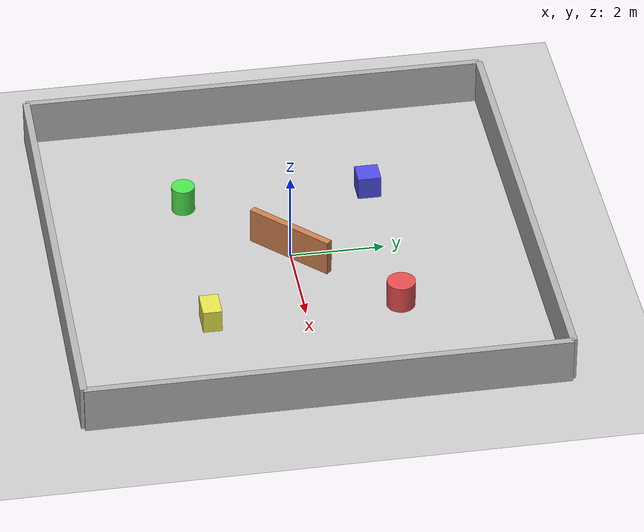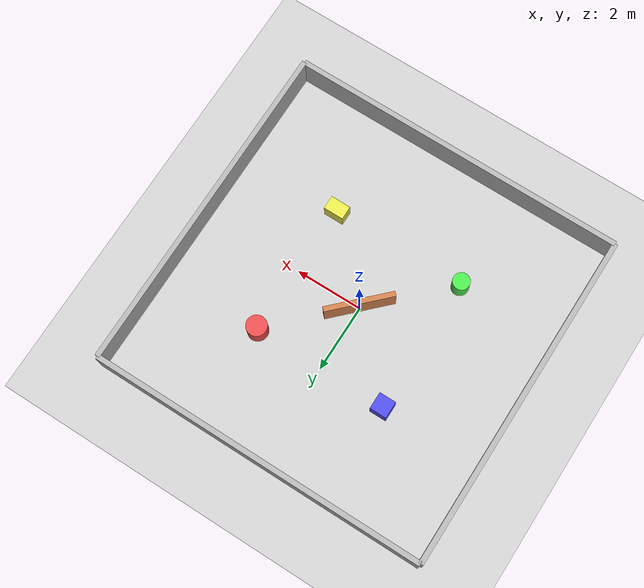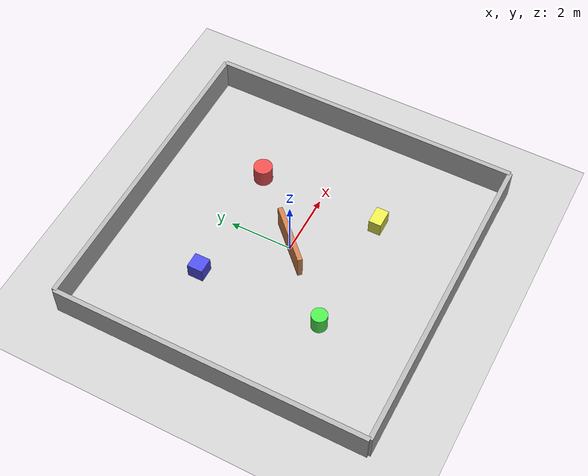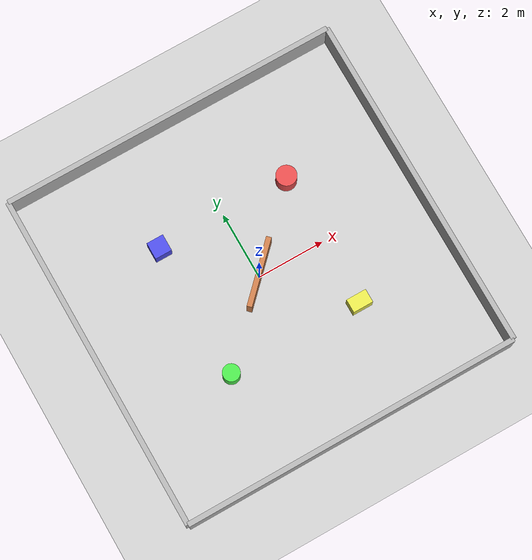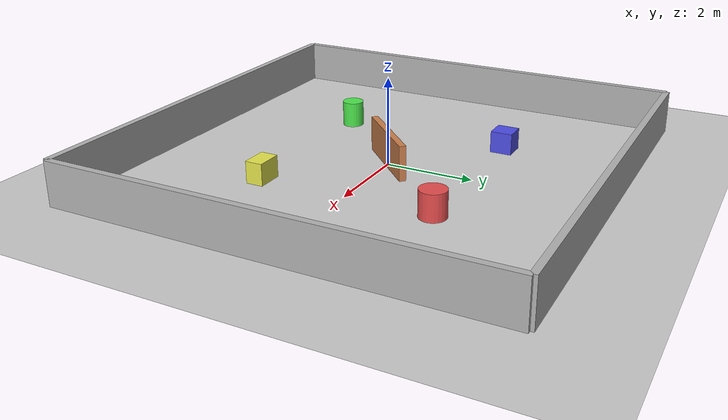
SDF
<?xml version="1.0"?>
<sdf version="1.6">
  <world name="test_arena">

    <!-- Physics settings -->
    <physics type="ode">
      <real_time_update_rate>1000.0</real_time_update_rate>
      <max_step_size>0.001</max_step_size>
      <real_time_factor>1</real_time_factor>
    </physics>

    <!-- Lighting -->
    <include>
      <uri>model://sun</uri>
    </include>

    <!-- Ground plane -->
    <include>
      <uri>model://ground_plane</uri>
    </include>

    <!-- ==================== ARENA WALLS ==================== -->

    <!-- North Wall -->
    <model name="wall_north">
      <static>true</static>
      <pose>0 5 0.5 0 0 0</pose>
      <link name="link">
        <collision name="collision">
          <geometry>
            <box>
              <size>10 0.15 1</size>
            </box>
          </geometry>
        </collision>
        <visual name="visual">
          <geometry>
            <box>
              <size>10 0.15 1</size>
            </box>
          </geometry>
          <material>
            <ambient>0.5 0.5 0.5 1</ambient>
            <diffuse>0.7 0.7 0.7 1</diffuse>
          </material>
        </visual>
      </link>
    </model>

    <!-- South Wall -->
    <model name="wall_south">
      <static>true</static>
      <pose>0 -5 0.5 0 0 0</pose>
      <link name="link">
        <collision name="collision">
          <geometry>
            <box>
              <size>10 0.15 1</size>
            </box>
          </geometry>
        </collision>
        <visual name="visual">
          <geometry>
            <box>
              <size>10 0.15 1</size>
            </box>
          </geometry>
          <material>
            <ambient>0.5 0.5 0.5 1</ambient>
            <diffuse>0.7 0.7 0.7 1</diffuse>
          </material>
        </visual>
      </link>
    </model>

    <!-- East Wall -->
    <model name="wall_east">
      <static>true</static>
      <pose>5 0 0.5 0 0 0</pose>
      <link name="link">
        <collision name="collision">
          <geometry>
            <box>
              <size>0.15 10 1</size>
            </box>
          </geometry>
        </collision>
        <visual name="visual">
          <geometry>
            <box>
              <size>0.15 10 1</size>
            </box>
          </geometry>
          <material>
            <ambient>0.5 0.5 0.5 1</ambient>
            <diffuse>0.7 0.7 0.7 1</diffuse>
          </material>
        </visual>
      </link>
    </model>

    <!-- West Wall -->
    <model name="wall_west">
      <static>true</static>
      <pose>-5 0 0.5 0 0 0</pose>
      <link name="link">
        <collision name="collision">
          <geometry>
            <box>
              <size>0.15 10 1</size>
            </box>
          </geometry>
        </collision>
        <visual name="visual">
          <geometry>
            <box>
              <size>0.15 10 1</size>
            </box>
          </geometry>
          <material>
            <ambient>0.5 0.5 0.5 1</ambient>
            <diffuse>0.7 0.7 0.7 1</diffuse>
          </material>
        </visual>
      </link>
    </model>

    <!-- ==================== OBSTACLES ==================== -->

    <!-- Cylinder obstacle 1 -->
    <model name="obstacle_cylinder_1">
      <static>true</static>
      <pose>2 2 0.3 0 0 0</pose>
      <link name="link">
        <collision name="collision">
          <geometry>
            <cylinder>
              <radius>0.3</radius>
              <length>0.6</length>
            </cylinder>
          </geometry>
        </collision>
        <visual name="visual">
          <geometry>
            <cylinder>
              <radius>0.3</radius>
              <length>0.6</length>
            </cylinder>
          </geometry>
          <material>
            <ambient>0.8 0.2 0.2 1</ambient>
            <diffuse>0.9 0.3 0.3 1</diffuse>
          </material>
        </visual>
      </link>
    </model>

    <!-- Cylinder obstacle 2 -->
    <model name="obstacle_cylinder_2">
      <static>true</static>
      <pose>-2 -2 0.3 0 0 0</pose>
      <link name="link">
        <collision name="collision">
          <geometry>
            <cylinder>
              <radius>0.25</radius>
              <length>0.6</length>
            </cylinder>
          </geometry>
        </collision>
        <visual name="visual">
          <geometry>
            <cylinder>
              <radius>0.25</radius>
              <length>0.6</length>
            </cylinder>
          </geometry>
          <material>
            <ambient>0.2 0.8 0.2 1</ambient>
            <diffuse>0.3 0.9 0.3 1</diffuse>
          </material>
        </visual>
      </link>
    </model>

    <!-- Box obstacle 1 -->
    <model name="obstacle_box_1">
      <static>true</static>
      <pose>-2 2 0.25 0 0 0</pose>
      <link name="link">
        <collision name="collision">
          <geometry>
            <box>
              <size>0.5 0.5 0.5</size>
            </box>
          </geometry>
        </collision>
        <visual name="visual">
          <geometry>
            <box>
              <size>0.5 0.5 0.5</size>
            </box>
          </geometry>
          <material>
            <ambient>0.2 0.2 0.8 1</ambient>
            <diffuse>0.3 0.3 0.9 1</diffuse>
          </material>
        </visual>
      </link>
    </model>

    <!-- Box obstacle 2 -->
    <model name="obstacle_box_2">
      <static>true</static>
      <pose>2 -2 0.25 0 0 0</pose>
      <link name="link">
        <collision name="collision">
          <geometry>
            <box>
              <size>0.6 0.4 0.5</size>
            </box>
          </geometry>
        </collision>
        <visual name="visual">
          <geometry>
            <box>
              <size>0.6 0.4 0.5</size>
            </box>
          </geometry>
          <material>
            <ambient>0.8 0.8 0.2 1</ambient>
            <diffuse>0.9 0.9 0.3 1</diffuse>
          </material>
        </visual>
      </link>
    </model>

    <!-- Center wall obstacle -->
    <model name="obstacle_wall_center">
      <static>true</static>
      <pose>0 0 0.4 0 0 0.785</pose>
      <link name="link">
        <collision name="collision">
          <geometry>
            <box>
              <size>2 0.15 0.8</size>
            </box>
          </geometry>
        </collision>
        <visual name="visual">
          <geometry>
            <box>
              <size>2 0.15 0.8</size>
            </box>
          </geometry>
          <material>
            <ambient>0.6 0.4 0.2 1</ambient>
            <diffuse>0.8 0.5 0.3 1</diffuse>
          </material>
        </visual>
      </link>
    </model>

  </world>
</sdf>
